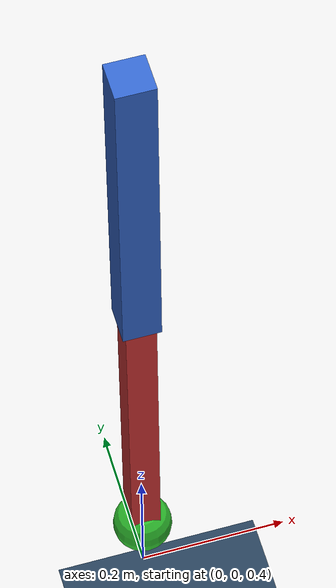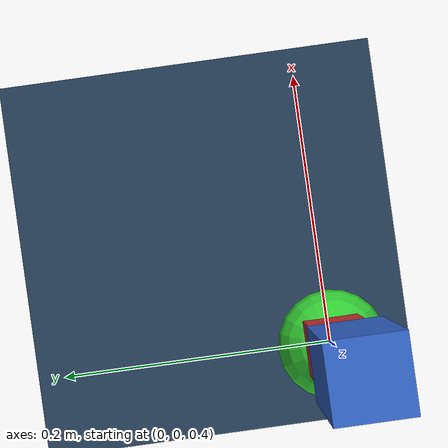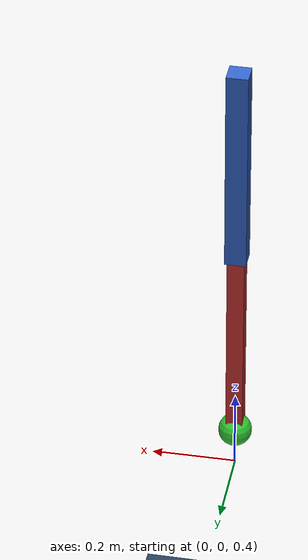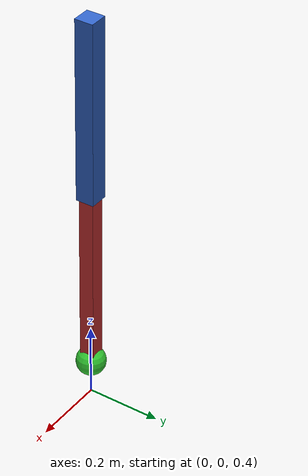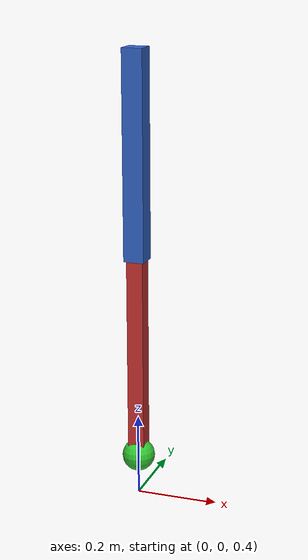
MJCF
<!--
Copyright 2025 Zordi, Inc. All rights reserved.

MuJoCo model for 2-DOF vertical double pendulum with gravity compensation testing
-->
<mujoco model="test_2dof_gravity">
  <compiler angle="radian" meshdir="." autolimits="true"/>

  <!-- TEMP: gravity disabled for IK debugging -->
  <option timestep="0.001" gravity="0 0 0"/>

  <!-- Keyframes for testing different initial poses -->
  <keyframe>
    <key name="test_pose" qpos="0.3 -0.2" qvel="0 0"/>
    <key name="home" qpos="0.0 0.0" qvel="0 0"/>
    <key name="hanging" qpos="-1.57 -1.57" qvel="0 0"/>
    <key name="bent_forward" qpos="0.5 -0.5" qvel="0 0"/>
    <key name="bent_back" qpos="-0.5 0.5" qvel="0 0"/>
    <key name="horizontal" qpos="1.57 0.0" qvel="0 0"/>
    <key name="folded" qpos="0.0 1.57" qvel="0 0"/>
  </keyframe>

  <asset>
    <texture name="grid" type="2d" builtin="checker" width="512" height="512" rgb1="0.1 0.2 0.3" rgb2="0.2 0.3 0.4"/>
    <material name="grid" texture="grid" texrepeat="1 1" texuniform="true" reflectance="0.2"/>
  </asset>

  <worldbody>
    <light diffuse=".5 .5 .5" pos="0 0 3" dir="0 0 -1"/>
    <geom name="floor" type="plane" size="10 10 0.05" material="grid"/>

    <!-- Vertical double pendulum -->
    <body name="link1" pos="0 0 1.5">
      <!-- Joint 1: Rotates about Y-axis -->
      <joint name="joint1" type="hinge" axis="0 1 0" range="-3.14 3.14" damping="0.1"/>

      <!-- Link 1: 1kg mass, 0.5m length, COM at 0.25m below pivot -->
      <inertial pos="0 0 -0.25" mass="1.0" diaginertia="0.0208 0.0208 0.001"/>

      <!-- Visual: vertical bar -->
      <geom name="link1_vis" type="box" size="0.025 0.025 0.25" pos="0 0 -0.25" rgba="0.2 0.4 0.8 1"/>

      <!-- Link 2: extends from end of link 1 -->
      <body name="link2" pos="0 0 -0.5">
        <!-- Joint 2: Rotates about Y-axis -->
        <joint name="joint2" type="hinge" axis="0 1 0" range="-3.14 3.14" damping="0.1"/>

        <!-- Link 2: 0.5kg mass, 0.5m length, COM at 0.25m below pivot -->
        <inertial pos="0 0 -0.25" mass="0.5" diaginertia="0.0104 0.0104 0.0005"/>

        <!-- Visual: vertical bar -->
        <geom name="link2_vis" type="box" size="0.02 0.02 0.25" pos="0 0 -0.25" rgba="0.8 0.2 0.2 1"/>

        <!-- End-effector -->
        <body name="ee_link" pos="0 0 -0.5">
          <geom name="ee" type="sphere" size="0.04" rgba="0.2 0.8 0.2 1"/>
          <inertial pos="0 0 0" mass="0.01" diaginertia="0.00001 0.00001 0.00001"/>
          <!-- Site for visualization and tracking -->
          <site name="ee_site" pos="0 0 0" size="0.01" rgba="1 1 0 1"/>
        </body>
      </body>
    </body>
  </worldbody>

  <actuator>
    <!-- MIT mode actuators for joint1 -->
    <!-- Position actuator: kp=100, kv=0 -->
    <position name="act_pos_joint1" joint="joint1"
              kp="100.0" kv="0.0"
              ctrlrange="-3.14 3.14" forcerange="-50 50"/>

    <!-- Velocity actuator: kv=10 (auto-neutralizes when ctrl=qd) -->
    <velocity name="act_vel_joint1" joint="joint1"
              kv="10.0"
              ctrlrange="-2.0 2.0" forcerange="-50 50"/>

    <!-- Torque actuator: Direct force control -->
    <motor name="act_tau_joint1" joint="joint1"
           ctrlrange="-50 50" forcerange="-50 50"/>

    <!-- MIT mode actuators for joint2 -->
    <!-- Position actuator: kp=50, kv=0 -->
    <position name="act_pos_joint2" joint="joint2"
              kp="50.0" kv="0.0"
              ctrlrange="-3.14 3.14" forcerange="-25 25"/>

    <!-- Velocity actuator: kv=5 (auto-neutralizes when ctrl=qd) -->
    <velocity name="act_vel_joint2" joint="joint2"
              kv="5.0"
              ctrlrange="-2.0 2.0" forcerange="-25 25"/>

    <!-- Torque actuator: Direct force control -->
    <motor name="act_tau_joint2" joint="joint2"
           ctrlrange="-25 25" forcerange="-25 25"/>
  </actuator>
</mujoco>
